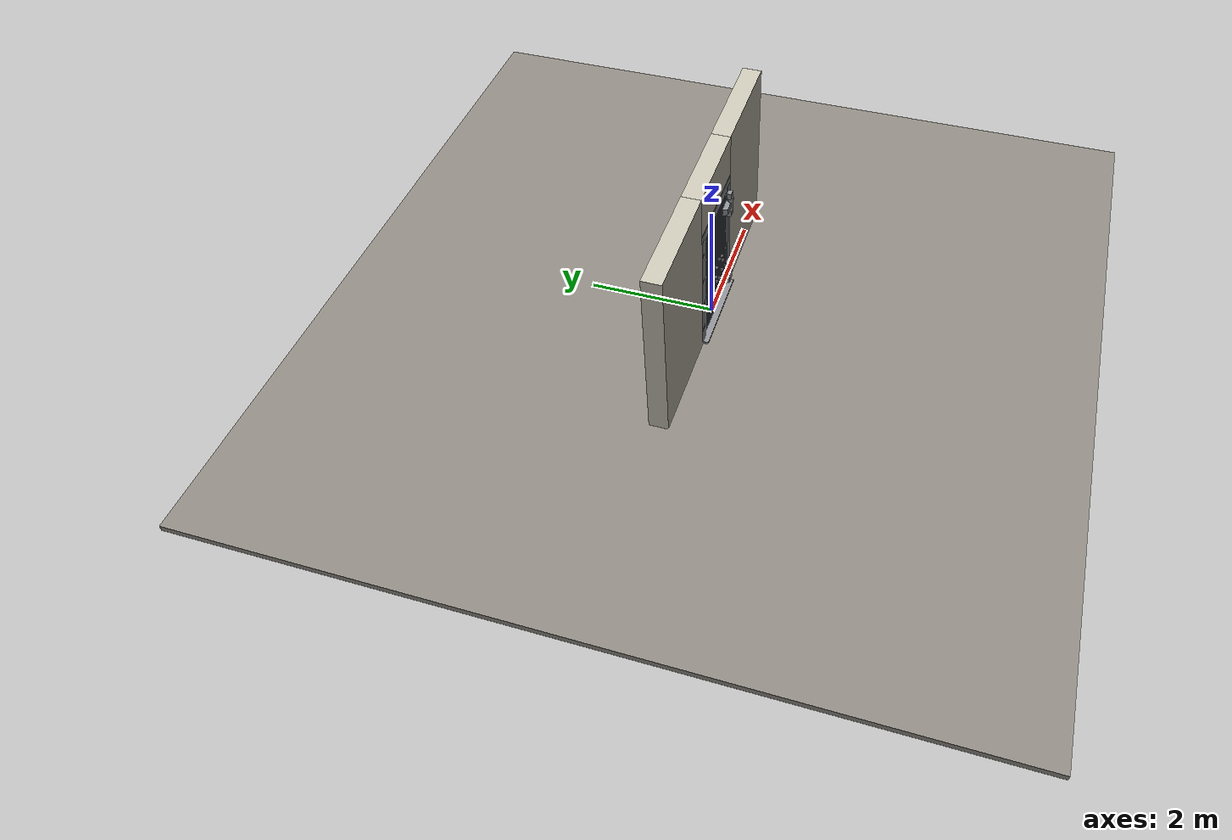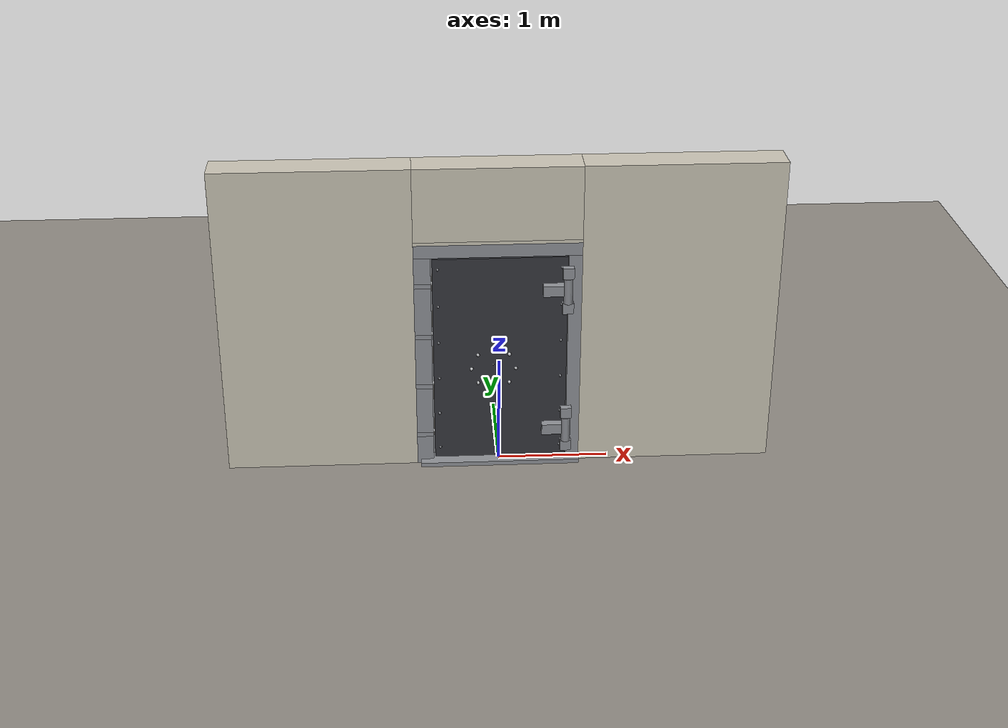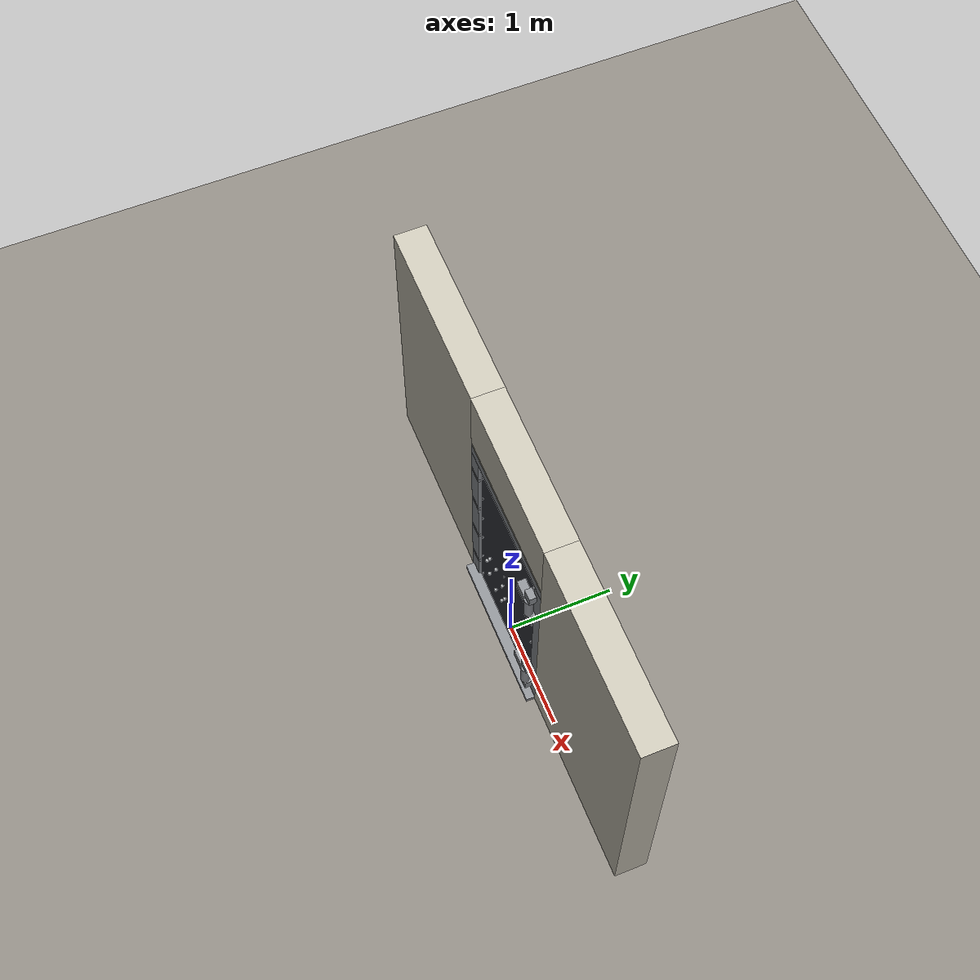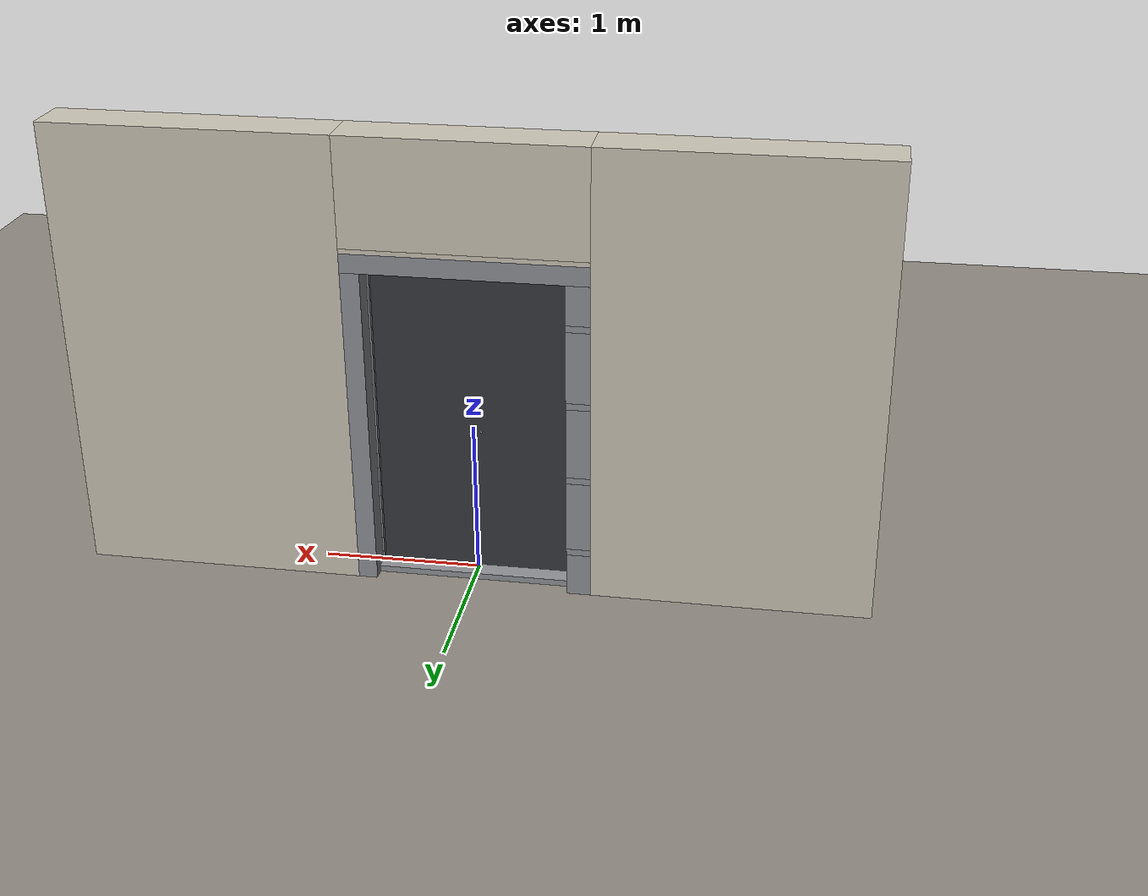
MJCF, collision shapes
<?xml version="1.0" ?>
<mujoco model="db0748_vault_full">
  <compiler angle="radian" meshdir="../../hardware" texturedir="../../textures" autolimits="true" inertiafromgeom="false"/>
  <option timestep="0.002" integrator="implicitfast" cone="elliptic" impratio="10" noslip_iterations="3">
    <flag multiccd="enable"/>
  </option>
  <size memory="16M"/>
  <default>
    <geom condim="4" solref="0.005 1" solimp="0.95 0.99 0.001"/>
    <joint solreflimit="0.005 1" solimplimit="0.95 0.99 0.001"/>
    <tendon solreflimit="0.005 1"/>
    <equality solref="0.002 1"/>
  </default>
  <visual>
    <headlight ambient="0.4 0.4 0.4" diffuse="0.7 0.7 0.7" specular="0.2 0.2 0.2"/>
    <quality shadowsize="4096"/>
    <map znear="0.01" zfar="60"/>
  </visual>
  <asset>
    <mesh name="wheel_3a0bfbe305" file="wheel_3a0bfbe305.obj"/>
    <material name="mat_floor" rgba="0.55 0.53 0.5 1" specular="0.2" shininess="0.15" reflectance="0"/>
    <material name="mat_wall" rgba="0.78 0.76 0.7 1" specular="0.2" shininess="0.1" reflectance="0"/>
    <material name="mat_leaf" rgba="0.2 0.21 0.23 1" specular="0.23" shininess="0.35" reflectance="0.02"/>
    <material name="mat_rivet" rgba="0.55 0.56 0.58 1" specular="0.8" shininess="0.55" reflectance="0.4"/>
    <material name="mat_op_stainless" rgba="0.75 0.76 0.77 1" specular="0.8" shininess="0.65" reflectance="0.4"/>
    <material name="mat_trim" rgba="0.85 0.66 0.3 1" specular="0.8" shininess="0.75" reflectance="0.4"/>
    <material name="mat_vault_bolt" rgba="0.75 0.76 0.77 1" specular="0.8" shininess="0.65" reflectance="0.4"/>
    <material name="mat_frame" rgba="0.55 0.56 0.58 1" specular="0.8" shininess="0.55" reflectance="0.4"/>
    <material name="mat_hinge" rgba="0.55 0.56 0.58 1" specular="0.8" shininess="0.55" reflectance="0.4"/>
    <texture name="skybox" type="skybox" builtin="gradient" rgb1="0.6 0.7 0.85" rgb2="0.9 0.92 0.95" width="256" height="256"/>
  </asset>
  <worldbody>
    <light name="sun" pos="1.5 -2.5 4" dir="-0.3 0.5 -0.8" directional="true" diffuse="0.8 0.8 0.8" specular="0.3 0.3 0.3" castshadow="true"/>
    <light name="fill" pos="-1.5 2.5 3" dir="0.3 -0.5 -0.7" directional="true" diffuse="0.35 0.35 0.4" castshadow="false"/>
    <camera name="robot_view" pos="0 -2.485625 1.753375" xyaxes="1 0 0 0 0.26963 0.962964" fovy="52"/>
    <camera name="far_view" pos="0 2.645625 1.753375" xyaxes="-1 0 0 0 -0.26963 0.962964" fovy="52"/>
    <camera name="iso" pos="-1.949875 -2.075125 2.163875" xyaxes="0.741536 -0.670913 0 0.242917 0.268487 0.932151" fovy="46"/>
    <camera name="detail_handle" pos="0.124 -0.93 1.48" xyaxes="0.97561 0.219512 0 -0.070934 0.315262 0.94635" fovy="38"/>
    <geom name="floor" type="box" size="6 6 0.05" pos="0 0 -0.05" material="mat_floor" group="0" contype="1" conaffinity="1" friction="0.8 0.005 0.0001" density="2400"/>
    <geom name="wall_left" type="box" size="0.87 0.15 1.45" pos="-1.63 0.08 1.45" material="mat_wall" group="0" contype="1" conaffinity="1" friction="0.6 0.005 0.0001" density="800"/>
    <geom name="wall_right" type="box" size="0.885 0.15 1.45" pos="1.615 0.08 1.45" material="mat_wall" group="0" contype="1" conaffinity="1" friction="0.6 0.005 0.0001" density="800"/>
    <geom name="wall_header" type="box" size="0.745 0.15 0.34" pos="-0.015 0.08 2.56" material="mat_wall" group="0" contype="1" conaffinity="1" friction="0.6 0.005 0.0001" density="800"/>
    <geom name="jamb_hinge" type="box" size="0.06 0.15 1.035" pos="0.67 0.08 1.035" material="mat_frame" group="0" contype="1" conaffinity="1" friction="0.6 0.005 0.0001" density="300"/>
    <geom name="strike_300_wall_n" type="box" size="0.075 0.106 0.021" pos="-0.685 0.124 0.3" material="mat_frame" group="0" contype="1" conaffinity="1" friction="0.6 0.005 0.0001" density="300"/>
    <geom name="strike_300_wall_p" type="box" size="0.075 0.026 0.021" pos="-0.685 -0.044 0.3" material="mat_frame" group="0" contype="1" conaffinity="1" friction="0.6 0.005 0.0001" density="300"/>
    <geom name="strike_300_back" type="box" size="0.047 0.018 0.021" pos="-0.713 0 0.3" material="mat_frame" group="0" contype="1" conaffinity="1" friction="0.6 0.005 0.0001" density="300"/>
    <geom name="strike_800_wall_n" type="box" size="0.075 0.106 0.021" pos="-0.685 0.124 0.8" material="mat_frame" group="0" contype="1" conaffinity="1" friction="0.6 0.005 0.0001" density="300"/>
    <geom name="strike_800_wall_p" type="box" size="0.075 0.026 0.021" pos="-0.685 -0.044 0.8" material="mat_frame" group="0" contype="1" conaffinity="1" friction="0.6 0.005 0.0001" density="300"/>
    <geom name="strike_800_back" type="box" size="0.047 0.018 0.021" pos="-0.713 0 0.8" material="mat_frame" group="0" contype="1" conaffinity="1" friction="0.6 0.005 0.0001" density="300"/>
    <geom name="strike_1300_wall_n" type="box" size="0.075 0.106 0.021" pos="-0.685 0.124 1.3" material="mat_frame" group="0" contype="1" conaffinity="1" friction="0.6 0.005 0.0001" density="300"/>
    <geom name="strike_1300_wall_p" type="box" size="0.075 0.026 0.021" pos="-0.685 -0.044 1.3" material="mat_frame" group="0" contype="1" conaffinity="1" friction="0.6 0.005 0.0001" density="300"/>
    <geom name="strike_1300_back" type="box" size="0.047 0.018 0.021" pos="-0.713 0 1.3" material="mat_frame" group="0" contype="1" conaffinity="1" friction="0.6 0.005 0.0001" density="300"/>
    <geom name="strike_1800_wall_n" type="box" size="0.075 0.106 0.021" pos="-0.685 0.124 1.8" material="mat_frame" group="0" contype="1" conaffinity="1" friction="0.6 0.005 0.0001" density="300"/>
    <geom name="strike_1800_wall_p" type="box" size="0.075 0.026 0.021" pos="-0.685 -0.044 1.8" material="mat_frame" group="0" contype="1" conaffinity="1" friction="0.6 0.005 0.0001" density="300"/>
    <geom name="strike_1800_back" type="box" size="0.047 0.018 0.021" pos="-0.713 0 1.8" material="mat_frame" group="0" contype="1" conaffinity="1" friction="0.6 0.005 0.0001" density="300"/>
    <geom name="jamb_strike_0" type="box" size="0.075 0.15 0.1395" pos="-0.685 0.08 0.1395" material="mat_frame" group="0" contype="1" conaffinity="1" friction="0.6 0.005 0.0001" density="300"/>
    <geom name="jamb_strike_1" type="box" size="0.075 0.15 0.229" pos="-0.685 0.08 0.55" material="mat_frame" group="0" contype="1" conaffinity="1" friction="0.6 0.005 0.0001" density="300"/>
    <geom name="jamb_strike_2" type="box" size="0.075 0.15 0.229" pos="-0.685 0.08 1.05" material="mat_frame" group="0" contype="1" conaffinity="1" friction="0.6 0.005 0.0001" density="300"/>
    <geom name="jamb_strike_3" type="box" size="0.075 0.15 0.229" pos="-0.685 0.08 1.55" material="mat_frame" group="0" contype="1" conaffinity="1" friction="0.6 0.005 0.0001" density="300"/>
    <geom name="jamb_strike_4" type="box" size="0.075 0.15 0.1245" pos="-0.685 0.08 1.9455" material="mat_frame" group="0" contype="1" conaffinity="1" friction="0.6 0.005 0.0001" density="300"/>
    <geom name="jamb_head" type="box" size="0.745 0.15 0.06" pos="-0.015 0.08 2.13" material="mat_frame" group="0" contype="1" conaffinity="1" friction="0.6 0.005 0.0001" density="300"/>
    <geom name="head_stud" type="box" size="0.745 0.15 0.015" pos="-0.015 0.08 2.205" material="mat_wall" group="0" contype="1" conaffinity="1" friction="0.6 0.005 0.0001" density="500"/>
    <geom name="stop_hinge" type="box" size="0.0055 0.016 1.035" pos="0.6045 0.0665 1.035" material="mat_frame" group="0" contype="1" conaffinity="1" friction="0.6 0.005 0.0001" density="300"/>
    <geom name="stop_strike" type="box" size="0.0055 0.016 1.035" pos="-0.6045 0.0665 1.035" material="mat_frame" group="0" contype="1" conaffinity="1" friction="0.6 0.005 0.0001" density="300"/>
    <geom name="stop_head" type="box" size="0.61 0.016 0.0055" pos="0 0.0665 2.0645" material="mat_frame" group="0" contype="1" conaffinity="1" friction="0.6 0.005 0.0001" density="300"/>
    <geom name="sill_step" type="box" size="0.73 0.15 0.02" pos="0 0 0.02" material="mat_frame" group="0" contype="1" conaffinity="1" friction="0.6 0.005 0.0001" density="7850"/>
    <geom name="hinge_0_bracket_b" type="box" size="0.05 0.0325 0.05" pos="0.604 -0.1025 0.18" material="mat_hinge" group="1" contype="0" conaffinity="0" density="7850"/>
    <geom name="hinge_0_bracket_t" type="box" size="0.05 0.0325 0.05" pos="0.604 -0.1025 0.52" material="mat_hinge" group="1" contype="0" conaffinity="0" density="7850"/>
    <geom name="hinge_1_bracket_b" type="box" size="0.05 0.0325 0.05" pos="0.604 -0.1025 1.58" material="mat_hinge" group="1" contype="0" conaffinity="0" density="7850"/>
    <geom name="hinge_1_bracket_t" type="box" size="0.05 0.0325 0.05" pos="0.604 -0.1025 1.92" material="mat_hinge" group="1" contype="0" conaffinity="0" density="7850"/>
    <site name="approach_point" pos="0 -1.5 0" quat="1 0 0 0" size="0.05" rgba="0.2 0.9 0.2 0.5" group="4"/>
    <site name="goal_point" pos="0 1.5 0" quat="1 0 0 0" size="0.05" rgba="0.2 0.9 0.2 0.5" group="4"/>
    <site name="door_plane_center" pos="0 0 1.035" quat="1 0 0 0" size="0.02" rgba="0.2 0.9 0.2 0.5" group="4"/>
    <body name="leaf" pos="0.61 0 0">
      <inertial pos="-0.581323 -0.004656 1.05" mass="995.122768" quat="0.504707 0.495249 -0.504707 0.495249" diaginertia="128.063801086 340.260003489 465.893175843"/>
      <joint name="leaf_hinge" type="hinge" axis="0 0 1" pos="-0.006 -0.115 0" limited="true" range="0 1.745329" damping="0.798984" frictionloss="20.147412" armature="0.5"/>
      <geom name="leaf_slab" type="box" size="0.6 0.05 1" pos="-0.606 0 1.05" material="mat_leaf" group="0" contype="1" conaffinity="1" friction="0.45 0.005 0.0001" density="1"/>
      <geom name="leaf_rivet_0_0" type="sphere" size="0.012" pos="-0.056 -0.05 0.15" material="mat_rivet" group="2" contype="0" conaffinity="0" density="7850"/>
      <geom name="leaf_rivet_0_1" type="sphere" size="0.012" pos="-1.156 -0.05 0.15" material="mat_rivet" group="2" contype="0" conaffinity="0" density="7850"/>
      <geom name="leaf_rivet_1_0" type="sphere" size="0.012" pos="-0.056 -0.05 0.51" material="mat_rivet" group="2" contype="0" conaffinity="0" density="7850"/>
      <geom name="leaf_rivet_1_1" type="sphere" size="0.012" pos="-1.156 -0.05 0.51" material="mat_rivet" group="2" contype="0" conaffinity="0" density="7850"/>
      <geom name="leaf_rivet_2_0" type="sphere" size="0.012" pos="-0.056 -0.05 0.87" material="mat_rivet" group="2" contype="0" conaffinity="0" density="7850"/>
      <geom name="leaf_rivet_2_1" type="sphere" size="0.012" pos="-1.156 -0.05 0.87" material="mat_rivet" group="2" contype="0" conaffinity="0" density="7850"/>
      <geom name="leaf_rivet_3_0" type="sphere" size="0.012" pos="-0.056 -0.05 1.23" material="mat_rivet" group="2" contype="0" conaffinity="0" density="7850"/>
      <geom name="leaf_rivet_3_1" type="sphere" size="0.012" pos="-1.156 -0.05 1.23" material="mat_rivet" group="2" contype="0" conaffinity="0" density="7850"/>
      <geom name="leaf_rivet_4_0" type="sphere" size="0.012" pos="-0.056 -0.05 1.59" material="mat_rivet" group="2" contype="0" conaffinity="0" density="7850"/>
      <geom name="leaf_rivet_4_1" type="sphere" size="0.012" pos="-1.156 -0.05 1.59" material="mat_rivet" group="2" contype="0" conaffinity="0" density="7850"/>
      <geom name="leaf_rivet_5_0" type="sphere" size="0.012" pos="-0.056 -0.05 1.95" material="mat_rivet" group="2" contype="0" conaffinity="0" density="7850"/>
      <geom name="leaf_rivet_5_1" type="sphere" size="0.012" pos="-1.156 -0.05 1.95" material="mat_rivet" group="2" contype="0" conaffinity="0" density="7850"/>
      <geom name="hinge_0" type="cylinder" size="0.04 0.12" pos="-0.006 -0.115 0.35" material="mat_hinge" group="1" contype="0" conaffinity="0" density="7850"/>
      <geom name="hinge_0_arm" type="box" size="0.11 0.04 0.05" pos="-0.116 -0.09 0.35" material="mat_hinge" group="1" contype="0" conaffinity="0" density="7850"/>
      <geom name="hinge_1" type="cylinder" size="0.04 0.12" pos="-0.006 -0.115 1.75" material="mat_hinge" group="1" contype="0" conaffinity="0" density="7850"/>
      <geom name="hinge_1_arm" type="box" size="0.11 0.04 0.05" pos="-0.116 -0.09 1.75" material="mat_hinge" group="1" contype="0" conaffinity="0" density="7850"/>
      <body name="wheel" pos="-0.666 0 1">
        <inertial pos="0 -0.122433 0" mass="3.883662" quat="0.707107 -0.707107 0 0" diaginertia="0.062464363 0.062464363 0.115746624"/>
        <joint name="wheel_hinge" type="hinge" axis="0 1 0" limited="true" range="0 6.2832" damping="0.5" frictionloss="5" armature="0.01"/>
        <geom name="wheel_spindle" type="cylinder" size="0.006 0.058" pos="0 0 0" quat="0.707107 -0.707107 0 0" material="mat_op_stainless" group="1" contype="0" conaffinity="0" density="7850"/>
        <geom name="wheel_wheel_n" type="mesh" mesh="wheel_3a0bfbe305" pos="0 -0.05 0" quat="0 0 -0.707107 0.707107" material="mat_op_stainless" group="1" contype="0" conaffinity="0" density="3000"/>
        <geom name="wheel_wheel_col_0_n" type="sphere" size="0.015" pos="0.2 -0.13 0" material="mat_op_stainless" group="0" contype="1" conaffinity="1" friction="0.6 0.005 0.0001" density="3000"/>
        <geom name="wheel_wheel_col_1_n" type="sphere" size="0.015" pos="0.141421 -0.13 0.141421" material="mat_op_stainless" group="0" contype="1" conaffinity="1" friction="0.6 0.005 0.0001" density="3000"/>
        <geom name="wheel_wheel_col_2_n" type="sphere" size="0.015" pos="0 -0.13 0.2" material="mat_op_stainless" group="0" contype="1" conaffinity="1" friction="0.6 0.005 0.0001" density="3000"/>
        <geom name="wheel_wheel_col_3_n" type="sphere" size="0.015" pos="-0.141421 -0.13 0.141421" material="mat_op_stainless" group="0" contype="1" conaffinity="1" friction="0.6 0.005 0.0001" density="3000"/>
        <geom name="wheel_wheel_col_4_n" type="sphere" size="0.015" pos="-0.2 -0.13 0" material="mat_op_stainless" group="0" contype="1" conaffinity="1" friction="0.6 0.005 0.0001" density="3000"/>
        <geom name="wheel_wheel_col_5_n" type="sphere" size="0.015" pos="-0.141421 -0.13 -0.141421" material="mat_op_stainless" group="0" contype="1" conaffinity="1" friction="0.6 0.005 0.0001" density="3000"/>
        <geom name="wheel_wheel_col_6_n" type="sphere" size="0.015" pos="0 -0.13 -0.2" material="mat_op_stainless" group="0" contype="1" conaffinity="1" friction="0.6 0.005 0.0001" density="3000"/>
        <geom name="wheel_wheel_col_7_n" type="sphere" size="0.015" pos="0.141421 -0.13 -0.141421" material="mat_op_stainless" group="0" contype="1" conaffinity="1" friction="0.6 0.005 0.0001" density="3000"/>
        <site name="wheel_grip_n" pos="0 -0.13 0.2" quat="1 0 0 0" size="0.012" rgba="0.2 0.9 0.2 0.5" group="4"/>
      </body>
      <body name="bolt_0" pos="-1.206 0 0.3">
        <inertial pos="0.015 0 0" mass="0.753392" quat="0 0 -0.707107 0.707107" diaginertia="0.000092986 0.000951134 0.000951134"/>
        <joint name="bolt_0_slide" type="slide" axis="1 0 0" limited="true" range="0 0.05" damping="20" frictionloss="25" armature="0.1"/>
        <geom name="bolt_0_geom" type="capsule" size="0.016 0.049" pos="0.015 0 0" quat="0.707107 0 -0.707107 0" material="mat_vault_bolt" group="0" contype="1" conaffinity="1" friction="0.6 0.005 0.0001" density="7850"/>
      </body>
      <body name="bolt_1" pos="-1.206 0 0.8">
        <inertial pos="0.015 0 0" mass="0.753392" quat="0 0 -0.707107 0.707107" diaginertia="0.000092986 0.000951134 0.000951134"/>
        <joint name="bolt_1_slide" type="slide" axis="1 0 0" limited="true" range="0 0.05" damping="20" frictionloss="25" armature="0.1"/>
        <geom name="bolt_1_geom" type="capsule" size="0.016 0.049" pos="0.015 0 0" quat="0.707107 0 -0.707107 0" material="mat_vault_bolt" group="0" contype="1" conaffinity="1" friction="0.6 0.005 0.0001" density="7850"/>
      </body>
      <body name="bolt_2" pos="-1.206 0 1.3">
        <inertial pos="0.015 0 0" mass="0.753392" quat="0 0 -0.707107 0.707107" diaginertia="0.000092986 0.000951134 0.000951134"/>
        <joint name="bolt_2_slide" type="slide" axis="1 0 0" limited="true" range="0 0.05" damping="20" frictionloss="25" armature="0.1"/>
        <geom name="bolt_2_geom" type="capsule" size="0.016 0.049" pos="0.015 0 0" quat="0.707107 0 -0.707107 0" material="mat_vault_bolt" group="0" contype="1" conaffinity="1" friction="0.6 0.005 0.0001" density="7850"/>
      </body>
      <body name="bolt_3" pos="-1.206 0 1.8">
        <inertial pos="0.015 0 0" mass="0.753392" quat="0 0 -0.707107 0.707107" diaginertia="0.000092986 0.000951134 0.000951134"/>
        <joint name="bolt_3_slide" type="slide" axis="1 0 0" limited="true" range="0 0.05" damping="20" frictionloss="25" armature="0.1"/>
        <geom name="bolt_3_geom" type="capsule" size="0.016 0.049" pos="0.015 0 0" quat="0.707107 0 -0.707107 0" material="mat_vault_bolt" group="0" contype="1" conaffinity="1" friction="0.6 0.005 0.0001" density="7850"/>
      </body>
    </body>
  </worldbody>
  <equality>
    <joint name="wheel_bolt_0" joint1="bolt_0_slide" joint2="wheel_hinge" polycoef="0 0.007958 0 0 0" active="true"/>
    <joint name="wheel_bolt_1" joint1="bolt_1_slide" joint2="wheel_hinge" polycoef="0 0.007958 0 0 0" active="true"/>
    <joint name="wheel_bolt_2" joint1="bolt_2_slide" joint2="wheel_hinge" polycoef="0 0.007958 0 0 0" active="true"/>
    <joint name="wheel_bolt_3" joint1="bolt_3_slide" joint2="wheel_hinge" polycoef="0 0.007958 0 0 0" active="true"/>
  </equality>
  <sensor>
    <jointpos name="leaf_hinge_pos" joint="leaf_hinge"/>
    <jointvel name="leaf_hinge_vel" joint="leaf_hinge"/>
    <jointpos name="wheel_hinge_pos" joint="wheel_hinge"/>
    <jointvel name="wheel_hinge_vel" joint="wheel_hinge"/>
    <jointpos name="bolt_0_slide_pos" joint="bolt_0_slide"/>
    <jointvel name="bolt_0_slide_vel" joint="bolt_0_slide"/>
    <jointpos name="bolt_1_slide_pos" joint="bolt_1_slide"/>
    <jointvel name="bolt_1_slide_vel" joint="bolt_1_slide"/>
    <jointpos name="bolt_2_slide_pos" joint="bolt_2_slide"/>
    <jointvel name="bolt_2_slide_vel" joint="bolt_2_slide"/>
    <jointpos name="bolt_3_slide_pos" joint="bolt_3_slide"/>
    <jointvel name="bolt_3_slide_vel" joint="bolt_3_slide"/>
  </sensor>
</mujoco>
